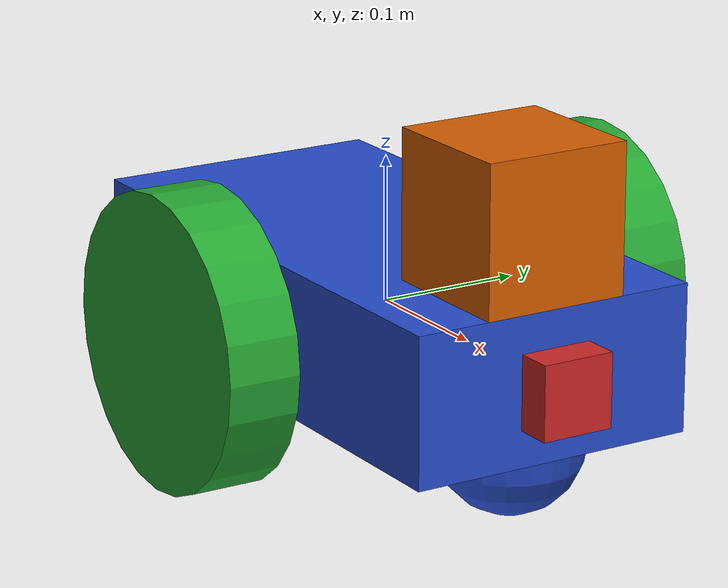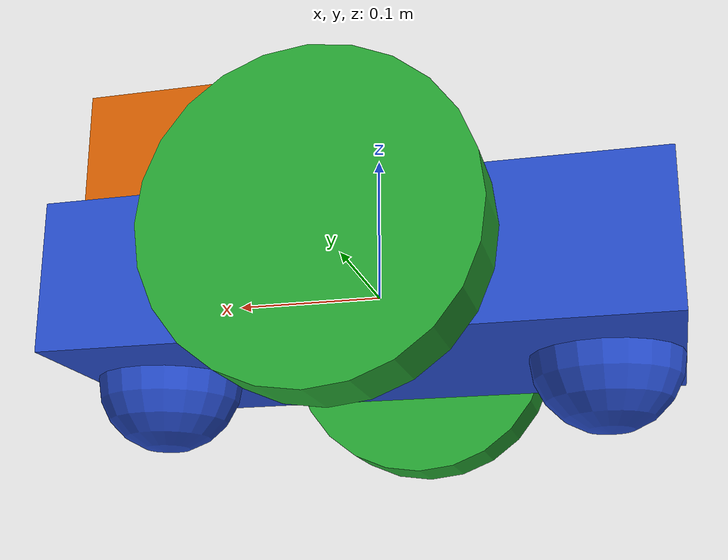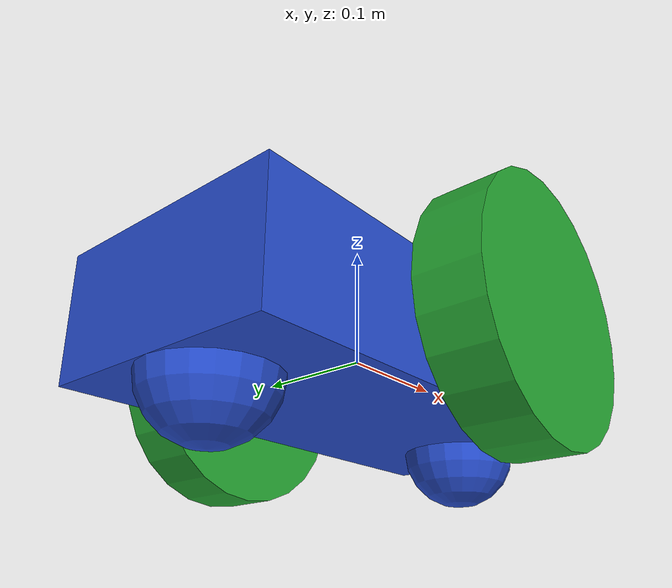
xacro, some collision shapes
<?xml version='1.0'?>

<robot name="my_robot" xmlns:xacro="http://www.ros.org/wiki/xacro">

  <xacro:include filename="$(find my_robot)/urdf/my_robot.gazebo" />

  <link name="robot_footprint"></link>

  <joint name="robot_footprint_joint" type="fixed">
    <origin xyz="0 0 0" rpy="0 0 0" />
    <parent link="robot_footprint"/>
    <child link="chassis" />
  </joint>

  <link name='chassis'>
    <pose>0 0 0.1 0 0 0</pose>

    <inertial>
      <mass value="15.0"/>
      <origin xyz="0.0 0 0" rpy=" 0 0 0"/>
      <inertia
          ixx="0.1" ixy="0" ixz="0"
          iyy="0.1" iyz="0"
          izz="0.1"
      />
    </inertial>

    <collision name='collision'>
      <origin xyz="0 0 0" rpy=" 0 0 0"/>
      <geometry>
        <box size=".4 .2 .1"/>
      </geometry>
    </collision>

    <visual name='chassis_visual'>
      <origin xyz="0 0 0" rpy=" 0 0 0"/>
      <geometry>
        <box size=".4 .2 .1"/>
      </geometry>
    </visual>

    <collision name='back_caster_collision'>
      <origin xyz="-0.15 0 -0.05" rpy=" 0 0 0"/>
      <geometry>
        <sphere radius="0.0499"/>
      </geometry>
    </collision>

    <visual name='back_caster_visual'>
      <origin xyz="-0.15 0 -0.05" rpy=" 0 0 0"/>
      <geometry>
        <sphere radius="0.05"/>
      </geometry>
    </visual>

    <collision name='front_caster_collision'>
      <origin xyz="0.15 0 -0.05" rpy=" 0 0 0"/>
      <geometry>
        <sphere radius="0.0499"/>
      </geometry>
    </collision>

    <visual name='front_caster_visual'>
      <origin xyz="0.15 0 -0.05" rpy=" 0 0 0"/>
      <geometry>
        <sphere radius="0.05"/>
      </geometry>
    </visual>

  </link>

  <link name='left_wheel'>
    <pose>0 0 0.1 0 0 0</pose>

    <inertial>
      <mass value="5.0"/>
      <origin xyz="0.0 0 0" rpy=" 0 1.5757 1.5757"/>
      <inertia
          ixx="0.1" ixy="0" ixz="0"
          iyy="0.1" iyz="0"
          izz="0.1"
      />
    </inertial>

    <collision name='collision'>
      <origin xyz="0 0 0" rpy=" 0 1.5757 1.5757"/>
      <geometry>
        <cylinder radius="0.1" length="0.05"/>
      </geometry>
    </collision>

    <visual name='left_wheel_visual'>
      <origin xyz="0 0 0" rpy=" 0 1.5757 1.5757"/>
      <geometry>
        <cylinder radius="0.1" length="0.05"/>
      </geometry>
    </visual>
  </link>

  <link name='right_wheel'>
    <pose>0 0 0.1 0 0 0</pose>

    <inertial>
      <mass value="5.0"/>
      <origin xyz="0.0 0 0" rpy=" 0 1.5757 1.5757"/>
      <inertia
          ixx="0.1" ixy="0" ixz="0"
          iyy="0.1" iyz="0"
          izz="0.1"
      />
    </inertial>

    <collision name='collision'>
      <origin xyz="0 0 0" rpy=" 0 1.5757 1.5757"/>
      <geometry>
        <cylinder radius="0.1" length="0.05"/>
      </geometry>
    </collision>

    <visual name='right_wheel_visual'>
      <origin xyz="0 0 0" rpy=" 0 1.5757 1.5757"/>
      <geometry>
        <cylinder radius="0.1" length="0.05"/>
      </geometry>
    </visual>
  </link>

  <joint type="continuous" name="left_wheel_hinge">
    <origin xyz="0 0.15 0" rpy="0 0 0"/>
    <child link="left_wheel"/>
    <parent link="chassis"/>
    <axis xyz="0 1 0" rpy="0 0 0"/>
    <limit effort="10000" velocity="1000"/>
    <dynamics damping="1.0" friction="1.0"/>
  </joint>

  <joint type="continuous" name="right_wheel_hinge">
    <origin xyz="0 -0.15 0" rpy="0 0 0"/>
    <child link="right_wheel"/>
    <parent link="chassis"/>
    <axis xyz="0 1 0" rpy="0 0 0"/>
    <limit effort="10000" velocity="1000"/>
    <dynamics damping="1.0" friction="1.0"/>
  </joint>

  <link name='camera'>
    <pose>0 0 0.1 0 0 0</pose>

    <inertial>
      <mass value="0.1"/>
      <origin xyz="0.0 0 0" rpy=" 0 0 0"/>
      <box_inertia  m="0.1" x="0.05" y="0.05" z="0.05"/>
      <inertia
          ixx="1e-6" ixy="0" ixz="0"
          iyy="1e-6" iyz="0"
          izz="1e-6"
      />
    </inertial>

    <collision name='collision'>
      <origin xyz="0 0 0" rpy=" 0 0 0"/>
      <geometry>
        <box size="0.05 0.05 0.05"/>
      </geometry>
    </collision>

    <visual name='camera_visual'>
      <origin xyz="0 0 0" rpy=" 0 0 0"/>
      <geometry>
        <box size="0.05 0.05 0.05"/>
      </geometry>
    </visual>
  </link>

  <joint type="fixed" name="camera_joint">
    <origin xyz="0.2 0 0" rpy="0 0 0"/>
    <child link="camera"/>
    <parent link="chassis"/>
    <axis xyz="0 1 0" rpy="0 0 0"/>
    <limit effort="10000" velocity="1000"/>
    <dynamics damping="1.0" friction="1.0"/>
  </joint>

  <link name='hokuyo'>
    <pose>0 0 0.1 0 0 0</pose>

    <inertial>
      <mass value="1e-5"/>
      <origin xyz="0.0 0 0" rpy=" 0 0 0"/>
      <inertia
          ixx="1e-6" ixy="0" ixz="0"
          iyy="1e-6" iyz="0"
          izz="1e-6"
      />
    </inertial>

    <collision name='collision'>
      <origin xyz="0 0 0" rpy=" 0 0 0"/>
      <geometry>
        <box size="0.1 0.1 0.1"/>
      </geometry>
    </collision>

    <visual name='hokuyo_visual'>
      <origin xyz="0 0 0" rpy=" 0 0 0"/>
      <geometry>
        <mesh filename="package://my_robot/meshes/hokuyo.dae"/>
      </geometry>
    </visual>
  </link>

  <joint type="fixed" name="hokuyo_joint">
    <origin xyz="0.15 0 0.1" rpy="0 0 0"/>
    <child link="hokuyo"/>
    <parent link="chassis"/>
    <axis xyz="0 1 0" rpy="0 0 0"/>
    <limit effort="10000" velocity="1000"/>
    <dynamics damping="1.0" friction="1.0"/>
  </joint>

  <gazebo reference="left_wheel">
    <material>Gazebo/Green</material>
  </gazebo>

  <gazebo reference="right_wheel">
    <material>Gazebo/Green</material>
  </gazebo>

  <gazebo reference="chassis">
    <material>Gazebo/Blue</material>
  </gazebo>

  <gazebo reference="camera">
    <material>Gazebo/Red</material>
  </gazebo>

</robot>
